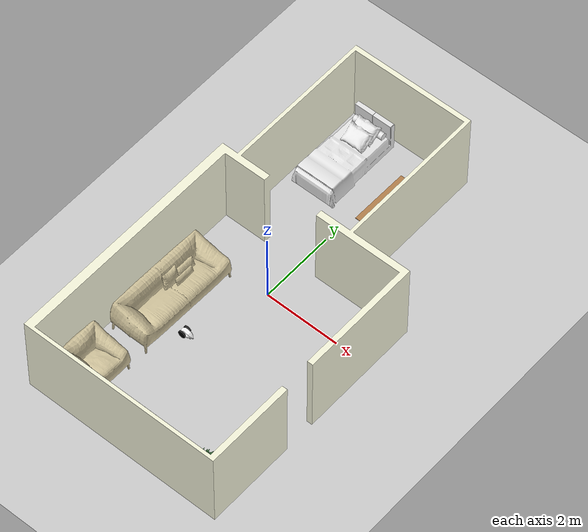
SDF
<sdf version="1.7">
 <world name="default">
  <physics name="1ms" type="ignored">
   <max_step_size>0.001</max_step_size>
   <real_time_factor>1.0</real_time_factor>
  </physics>
  <plugin filename="gz-sim-physics-system" name="gz::sim::systems::Physics"/>
  <plugin filename="gz-sim-sensors-system" name="gz::sim::systems::Sensors">
   <render_engine>ogre2</render_engine>
  </plugin>
  <plugin filename="gz-sim-user-commands-system" name="gz::sim::systems::UserCommands"/>
  <plugin filename="gz-sim-scene-broadcaster-system" name="gz::sim::systems::SceneBroadcaster"/>
  <light name="sun" type="directional">
   <pose>0 0 10 0 -0 0</pose>
   <diffuse>0.8 0.8 0.8 1</diffuse>
   <specular>0.2 0.2 0.2 1</specular>
   <attenuation>
    <range>1000</range>
    <constant>0.9</constant>
    <linear>0.01</linear>
    <quadratic>0.001</quadratic>
   </attenuation>
   <direction>-0.5 0.1 -0.9</direction>
   <spot><inner_angle>0</inner_angle><outer_angle>0</outer_angle><falloff>0</falloff></spot>
  </light>
  <model name="ground_plane">
   <static>true</static>
   <link name="link">
    <collision name="collision">
     <geometry><plane><normal>0 0 1</normal><size>100 100</size></plane></geometry>
     <surface>
      <contact><collide_bitmask>65535</collide_bitmask></contact>
      <friction><ode><mu>1.0</mu><mu2>0.5</mu2></ode></friction>
     </surface>
    </collision>
    <visual name="visual">
     <cast_shadows>0</cast_shadows>
     <geometry><plane><normal>0 0 1</normal><size>100 100</size></plane></geometry>
     <material>
      <script><uri>file://media/materials/scripts/gazebo.material</uri><name>Gazebo/Grey</name></script>
     </material>
    </visual>
   </link>
  </model>
  <gravity>0 0 -9.8</gravity>
  <magnetic_field>6e-06 2.3e-05 -4.2e-05</magnetic_field>
  <atmosphere type="adiabatic"/>
  <physics type="ode">
   <max_step_size>0.001</max_step_size>
   <real_time_factor>1</real_time_factor>
   <real_time_update_rate>1000</real_time_update_rate>
  </physics>
  <scene><ambient>0.4 0.4 0.4 1</ambient><background>0.7 0.7 0.7 1</background><shadows>1</shadows></scene>
  <audio><device>default</device></audio>
  <spherical_coordinates>
   <surface_model>EARTH_WGS84</surface_model>
   <latitude_deg>0</latitude_deg>
   <longitude_deg>0</longitude_deg>
   <elevation>0</elevation>
   <heading_deg>0</heading_deg>
  </spherical_coordinates>
  <include><uri>model://mouse_robot</uri><pose>-0.50 -2.00 0.07 0 0.18 0</pose></include>
  <include><uri>model://room</uri><pose>-13.98 -10.17 0 0 0 0</pose></include>
  <include><uri>model://bed</uri><pose>-2.74 -5.30 0 0 0 0</pose></include>
  <include><uri>model://plant</uri><pose>-5.39 -8.62 0 0 0 0</pose></include>
  <include><uri>model://sofa</uri><pose>-2.72 -8.30 0 0 0 0</pose></include>
  <include><uri>model://table</uri><pose>-0.02 1.89 0 0 0 0</pose></include>
 </world>
</sdf>

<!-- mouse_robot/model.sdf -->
<sdf version="1.8">
    <model name='generic_robot' canonical_link='chassis'>
        <!--chassis-->
        <link name="chassis">
        <pose>0 0 0 0 0 1.57</pose>

        <!-- Visual Geometry -->
        <visual name="act_visual">
            <geometry>
            <mesh>
                <uri>model://mouse_robot/mouse_robot.stl</uri>
                <scale>0.015 0.015 0.015</scale>
            </mesh>
            </geometry>
            <material>
                <ambient>1 1 1 1</ambient>
                <diffuse>1 1 1 1</diffuse>
                <specular>0.8 0.8 0.8 1</specular>
            </material>
        </visual>

        <!-- Collision Geometry -->
        <collision name="chassis_collision">
            <geometry>
            <box>
                <size>0.4 0.2 0.1</size>
            </box>
            </geometry>
        </collision>

        <!-- Inertial Properties -->
        <inertial>
            <mass>1.5</mass>
            <inertia>
            <ixx>0.095</ixx>
            <iyy>0.381</iyy>
            <izz>0.476</izz>
            </inertia>
        </inertial>
        </link>

         <frame name="lidar_frame" attached_to='chassis'>
            <pose>0.8 0 0.5 0 0 0</pose>
        </frame>

        <sensor type="lidar" name="lidar">
            <pose relative_to='lidar_frame'>0 0 0 0 0 0</pose>
            <topic>lidar</topic>
            <update_rate>10</update_rate>
            <ray>
                <scan>
                    <horizontal>
                        <samples>640</samples>
                        <resolution>1</resolution>
                        <min_angle>-1.396263</min_angle>
                        <max_angle>1.396263</max_angle>
                    </horizontal>
                    <vertical>
                        <samples>1</samples>
                        <resolution>0.01</resolution>
                        <min_angle>0</min_angle>
                        <max_angle>0</max_angle>
                    </vertical>
                </scan>
                <range>
                    <min>0.08</min>
                    <max>10.0</max>
                    <resolution>0.01</resolution>
                </range>
            </ray>
            <always_on>1</always_on>
            <visualize>true</visualize>
        </sensor>

        <!-- Left wheel-->
        <link name='left_wheel'>
            <pose relative_to="chassis">0.09 0.19 0 -1.5707 0 1.57</pose>
            <inertial>
                <mass>1</mass>
                <inertia>
                    <ixx>0.043333</ixx>
                    <ixy>0</ixy>
                    <ixz>0</ixz>
                    <iyy>0.043333</iyy>
                    <iyz>0</iyz>
                    <izz>0.08</izz>
                </inertia>
            </inertial>
            <visual name='visual'>
                <geometry>
                    <cylinder>
                        <radius>0.1</radius>
                        <length>0.03</length>
                    </cylinder>
                </geometry>
                <material>
                    <ambient>0 0 0 1</ambient>
                    <diffuse>0 0 0 1</diffuse>
                    <specular>0.1 0.1 0.1 1</specular>
                </material>
            </visual>
            <collision name='collision'>
                <geometry>
                    <cylinder>
                        <radius>0.1</radius>
                        <length>0.03</length>
                    </cylinder>
                </geometry>
            </collision>
        </link>

        <!--The same as left wheel but with different position-->
        <link name='right_wheel'>
            <pose relative_to="chassis">-0.09 0.19 0 -1.5707 0 1.57</pose>
            <inertial>
                <mass>1</mass>
                <inertia>
                    <ixx>0.043333</ixx>
                    <ixy>0</ixy>
                    <ixz>0</ixz>
                    <iyy>0.043333</iyy>
                    <iyz>0</iyz>
                    <izz>0.08</izz>
                </inertia>
            </inertial>
            <visual name='visual'>
                <geometry>
                    <cylinder>
                        <radius>0.1</radius>
                        <length>0.03</length>
                    </cylinder>
                </geometry>
                <material>
                    <ambient>0 0 0 1</ambient>
                    <diffuse>0 0 0 1</diffuse>
                    <specular>0.1 0.1 0.1 1</specular>
                </material>
            </visual>
            <collision name='collision'>
                <geometry>
                    <cylinder>
                        <radius>0.1</radius>
                        <length>0.03</length>
                    </cylinder>
                </geometry>
            </collision>
        </link>

        <frame name="caster_frame" attached_to='chassis'>
            <pose relative_to="chassis">0 0.02 -0.03 0 0 0</pose>
        </frame>

        <link name='caster'>
            <pose relative_to='caster_frame'>0 0 0 0 0 0</pose>
            <inertial>
                <mass>1</mass>
                <inertia>
                    <ixx>0.016</ixx>
                    <ixy>0</ixy>
                    <ixz>0</ixz>
                    <iyy>0.016</iyy>
                    <iyz>0</iyz>
                    <izz>0.016</izz>
                </inertia>
            </inertial>
            <visual name='visual'>
                <geometry>
                    <sphere>
                        <radius>0.04</radius>
                    </sphere>
                </geometry>
                <material>
                    <ambient>0 0 0 1</ambient>
                    <diffuse>0 0 0 1</diffuse>
                    <specular>0.1 0.1 0.1 1</specular>
                </material>
            </visual>
            <collision name='collision'>
                <geometry>
                    <sphere>
                        <radius>0.04</radius>
                    </sphere>
                </geometry>
            </collision>
        </link>

        <!--left wheel joint-->
        <joint name='left_wheel_joint' type='revolute'>
            <pose relative_to='left_wheel'/>
            <parent>chassis</parent>
            <child>left_wheel</child>
            <axis>
                <xyz expressed_in='__model__'>0 1 0</xyz> <!--can be descired to any frame or even arbitrary frames-->
                <limit>
                    <lower>-1.79769e+308</lower>    <!--negative infinity-->
                    <upper>1.79769e+308</upper>     <!--positive infinity-->
                </limit>
            </axis>
        </joint>

        <!--right wheel joint-->
        <joint name='right_wheel_joint' type='revolute'>
            <pose relative_to='right_wheel'/>
            <parent>chassis</parent>
            <child>right_wheel</child>
            <axis>
                <xyz expressed_in='__model__'>0 1 0</xyz>
                <limit>
                    <lower>-1.79769e+308</lower>    <!--negative infinity-->
                    <upper>1.79769e+308</upper>     <!--positive infinity-->
                </limit>
            </axis>
        </joint>

        <!--caster wheel joint--> <!--pose defult value is the child-->
        <joint name='caster_wheel' type='ball'>
            <parent>chassis</parent>
            <child>caster</child>
        </joint>

        <plugin
            filename="gz-sim-diff-drive-system"
            name="gz::sim::systems::DiffDrive">
            <left_joint>left_wheel_joint</left_joint>
            <right_joint>right_wheel_joint</right_joint>
            <wheel_separation>0.18</wheel_separation>
            <wheel_radius>0.1</wheel_radius>
            <odom_publish_frequency>10</odom_publish_frequency>
            <topic>cmd_vel</topic>
        </plugin>

        <!-- Moving Based on Key Press (WASD)-->
        <plugin filename="gz-sim-triggered-publisher-system"
                name="gz::sim::systems::TriggeredPublisher">
            <input type="gz.msgs.Int32" topic="/keyboard/keypress">
                <match field="data">87</match>
            </input>
            <output type="gz.msgs.Twist" topic="/cmd_vel">
                linear: {x: 0.5}, angular: {z: 0.0}
            </output>
        </plugin>
        <plugin filename="gz-sim-triggered-publisher-system"
                name="gz::sim::systems::TriggeredPublisher">
            <input type="gz.msgs.Int32" topic="/keyboard/keypress">
                <match field="data">83</match>
            </input>
            <output type="gz.msgs.Twist" topic="/cmd_vel">
                linear: {x: -0.5}, angular: {z: 0.0}
            </output>
        </plugin>
        <plugin filename="gz-sim-triggered-publisher-system"
                name="gz::sim::systems::TriggeredPublisher">
            <input type="gz.msgs.Int32" topic="/keyboard/keypress">
                <match field="data">65</match>
            </input>
            <output type="gz.msgs.Twist" topic="/cmd_vel">
                linear: {x: 0.0}, angular: {z: 0.5}
            </output>
        </plugin>
        <plugin filename="gz-sim-triggered-publisher-system"
                name="gz::sim::systems::TriggeredPublisher">
            <input type="gz.msgs.Int32" topic="/keyboard/keypress">
                <match field="data">68</match>
            </input>
            <output type="gz.msgs.Twist" topic="/cmd_vel">
                linear: {x: 0.0}, angular: {z: -0.5}
            </output>
        </plugin>
    </model>
</sdf>

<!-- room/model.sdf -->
<sdf version="1.8">
  <model name="room">
    <static>true</static>
    <link name="room_link">
      <visual name="room_visual">
        <geometry>
          <mesh>
            <uri>model://room/room.stl</uri>
            <scale>0.03 0.03 0.03</scale>
          </mesh>
        </geometry>
        <material>
          <ambient>0.96 0.96 0.86 1</ambient>
          <diffuse>0.96 0.96 0.86 1</diffuse>
          <specular>0.1 0.1 0.1 1</specular>
          <emissive>0 0 0 1</emissive>
        </material>
      </visual>
      <collision name="room_collision">
        <geometry>
          <mesh>
            <uri>model://room/room.stl</uri>
            <scale>0.03 0.03 0.03</scale>
          </mesh>
        </geometry>
      </collision>
    </link>
  </model>
</sdf>

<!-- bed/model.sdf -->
<sdf version="1.8">
  <model name="bed">
    <static>true</static>
    <link name="bed_link">
      <visual name="bed_visual">
        <geometry>
          <mesh>
            <uri>model://bed/bed.stl</uri>
            <scale>0.03 0.03 0.03</scale>
          </mesh>
        </geometry>
        <material>
          <ambient>0.9 0.9 0.9 1</ambient>
          <diffuse>0.9 0.9 0.9 1</diffuse>
          <specular>0.3 0.3 0.3 1</specular>
        </material>
      </visual>
      <collision name="bed_collision">
        <geometry>
          <mesh>
            <uri>model://bed/bed.stl</uri>
            <scale>0.03 0.03 0.03</scale>
          </mesh>
        </geometry>
      </collision>
    </link>
  </model>
</sdf>

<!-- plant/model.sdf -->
<sdf version="1.8">
  <model name="plant">
    <static>true</static>
    <link name="plant_link">
      <visual name="plant_visual">
        <geometry>
          <mesh>
            <uri>model://plant/plant.stl</uri>
            <scale>0.03 0.03 0.03</scale>
          </mesh>
        </geometry>
        <material>
          <ambient>0.2 0.4 0.2 1</ambient>
          <diffuse>0.2 0.4 0.2 1</diffuse>
        </material>
      </visual>
      <collision name="plant_collision">
        <geometry>
          <mesh>
            <uri>model://plant/plant.stl</uri>
            <scale>0.03 0.03 0.03</scale>
          </mesh>
        </geometry>
      </collision>
    </link>
  </model>
</sdf>

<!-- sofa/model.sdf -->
<sdf version="1.8">
  <model name="sofa">
    <static>true</static>
    <link name="sofa_link">
      <visual name="sofa_visual">
        <geometry>
          <mesh>
            <uri>model://sofa/sofa.stl</uri>
            <scale>0.03 0.03 0.03</scale>
          </mesh>
        </geometry>
      <material>
        <ambient>0.8 0.75 0.6 1</ambient>
        <diffuse>0.8 0.75 0.6 1</diffuse>
      </material>
      </visual>
      <collision name="sofa_collision">
        <geometry>
          <mesh>
            <uri>model://sofa/sofa.stl</uri>
            <scale>0.03 0.03 0.03</scale>
          </mesh>
        </geometry>
      </collision>
    </link>
  </model>
</sdf>

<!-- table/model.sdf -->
<sdf version="1.8">
  <model name="table">
    <static>true</static>
    <link name="table_link">
      <visual name="table_visual">
        <geometry>
          <mesh>
            <uri>model://table/table.stl</uri>
            <scale>0.022 0.022 0.022</scale>
          </mesh>
        </geometry>
        <material>
          <ambient>0.7 0.5 0.3 1</ambient>
          <diffuse>0.7 0.5 0.3 1</diffuse>
        </material>
      </visual>
      <collision name="table_collision">
        <geometry>
          <mesh>
            <uri>model://table/table.stl</uri>
            <scale>0.022 0.022 0.022</scale>
          </mesh>
        </geometry>
      </collision>
    </link>
  </model>
</sdf>
